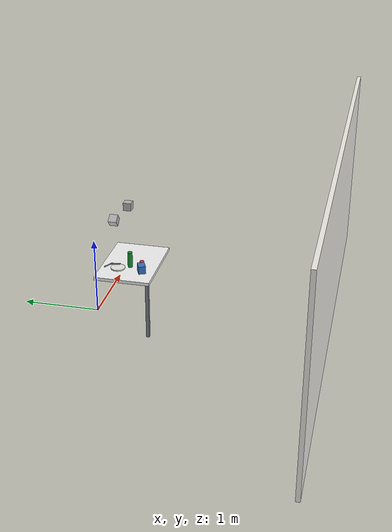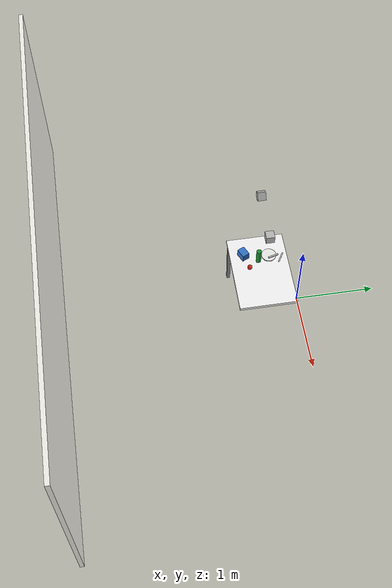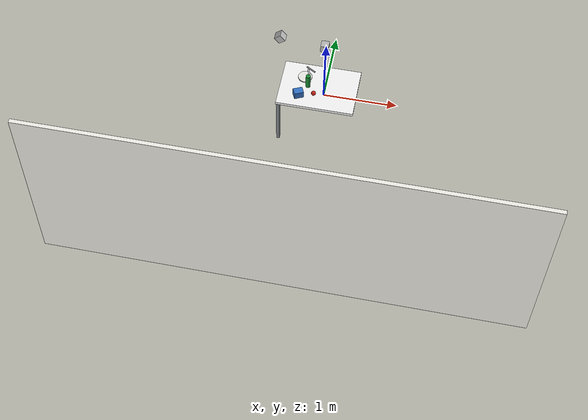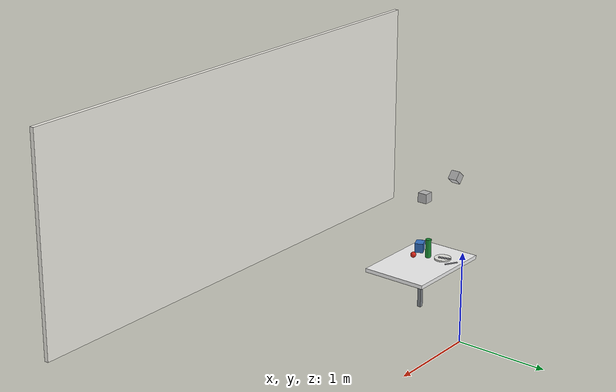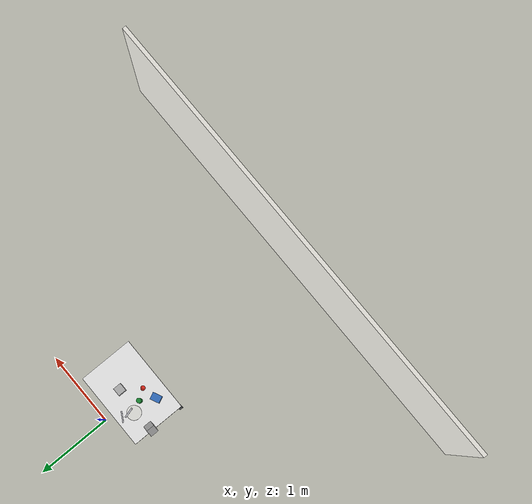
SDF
<sdf version="1.10">
 <world name="bps_room">
  <model name="wall_south">
   <static>true</static>
   <pose>0 -3 1.25 0 0 0</pose>
   <link name="link">
    <collision name="collision">
     <geometry><box><size>6 0.050000000000000003 2.5</size></box></geometry>
    </collision>
    <visual name="visual">
     <geometry><box><size>6 0.050000000000000003 2.5</size></box></geometry>
     <material>
      <ambient>0.949999988 0.939999998 0.910000026 1</ambient>
      <diffuse>0.949999988 0.939999998 0.910000026 1</diffuse>
     </material>
    </visual>
    <inertial>
     <mass>1</mass>
     <inertia><ixx>1</ixx><ixy>0</ixy><ixz>0</ixz><iyy>1</iyy><iyz>0</iyz><izz>1</izz></inertia>
    </inertial>
   </link>
  </model>
  <model name="experiment_table">
   <static>true</static>
   <pose>0 -0.5 0.75 0 0 0</pose>
   <link name="link">
    <collision name="collision">
     <geometry><box><size>1 0.69999999999999996 0.040000000000000001</size></box></geometry>
    </collision>
    <visual name="visual">
     <geometry><box><size>1 0.69999999999999996 0.040000000000000001</size></box></geometry>
     <material>
      <ambient>0.959999979 0.959999979 0.959999979 1</ambient>
      <diffuse>0.959999979 0.959999979 0.959999979 1</diffuse>
     </material>
    </visual>
    <inertial>
     <mass>1</mass>
     <inertia><ixx>1</ixx><ixy>0</ixy><ixz>0</ixz><iyy>1</iyy><iyz>0</iyz><izz>1</izz></inertia>
    </inertial>
   </link>
  </model>
  <model name="table_leg_fl">
   <static>true</static>
   <pose>-0.46999999999999997 -0.81999999999999995 0.375 0 0 0</pose>
   <link name="link">
    <collision name="collision">
     <geometry><box><size>0.040000000000000001 0.040000000000000001 0.75</size></box></geometry>
    </collision>
    <visual name="visual">
     <geometry><box><size>0.040000000000000001 0.040000000000000001 0.75</size></box></geometry>
     <material>
      <ambient>0.5 0.519999981 0.540000021 1</ambient>
      <diffuse>0.5 0.519999981 0.540000021 1</diffuse>
     </material>
    </visual>
    <inertial>
     <mass>1</mass>
     <inertia><ixx>1</ixx><ixy>0</ixy><ixz>0</ixz><iyy>1</iyy><iyz>0</iyz><izz>1</izz></inertia>
    </inertial>
   </link>
  </model>
  <model name="obj_bottle">
   <static>true</static>
   <pose>-0.13945299386978149 -0.51271718740463257 0.875 0 0 0</pose>
   <link name="link">
    <collision name="collision">
     <geometry>
      <cylinder><radius>0.029999999999999999</radius><length>0.20000000000000001</length></cylinder>
     </geometry>
    </collision>
    <visual name="visual">
     <geometry>
      <cylinder><radius>0.029999999999999999</radius><length>0.20000000000000001</length></cylinder>
     </geometry>
     <material>
      <ambient>0.100000001 0.550000012 0.200000003 1</ambient>
      <diffuse>0.100000001 0.550000012 0.200000003 1</diffuse>
      <specular>0.400000006 0.400000006 0.400000006 1</specular>
     </material>
     <plugin name="gz::sim::systems::Label" filename="gz-sim-label-system"><label>1</label></plugin>
    </visual>
    <inertial>
     <mass>1</mass>
     <inertia><ixx>1</ixx><ixy>0</ixy><ixz>0</ixz><iyy>1</iyy><iyz>0</iyz><izz>1</izz></inertia>
    </inertial>
   </link>
  </model>
  <model name="obj_tissue_box">
   <static>true</static>
   <pose>-0.23499999940395355 -0.68500000238418579 0.81999999284744263 0 0 0.43629998910939244</pose>
   <link name="link">
    <collision name="collision">
     <geometry><box><size>0.12 0.089999999999999997 0.10000000000000001</size></box></geometry>
    </collision>
    <visual name="visual">
     <geometry><box><size>0.12 0.089999999999999997 0.10000000000000001</size></box></geometry>
     <material>
      <ambient>0.200000003 0.449999988 0.779999971 1</ambient>
      <diffuse>0.200000003 0.449999988 0.779999971 1</diffuse>
      <specular>0.200000003 0.200000003 0.200000003 1</specular>
     </material>
     <plugin name="gz::sim::systems::Label" filename="gz-sim-label-system"><label>3</label></plugin>
    </visual>
    <inertial>
     <mass>1</mass>
     <inertia><ixx>1</ixx><ixy>0</ixy><ixz>0</ixz><iyy>1</iyy><iyz>0</iyz><izz>1</izz></inertia>
    </inertial>
   </link>
  </model>
  <model name="obj_tomato">
   <static>true</static>
   <pose>-0.044999999999999998 -0.63500000000000001 0.80000000000000004 0 0 0</pose>
   <link name="link">
    <collision name="collision">
     <geometry><sphere><radius>0.029999999999999999</radius></sphere></geometry>
    </collision>
    <visual name="visual">
     <geometry><sphere><radius>0.029999999999999999</radius></sphere></geometry>
     <material>
      <ambient>0.850000024 0.150000006 0.100000001 1</ambient>
      <diffuse>0.850000024 0.150000006 0.100000001 1</diffuse>
      <specular>0.400000006 0.400000006 0.400000006 1</specular>
     </material>
     <plugin name="gz::sim::systems::Label" filename="gz-sim-label-system"><label>9</label></plugin>
    </visual>
    <inertial>
     <mass>1</mass>
     <inertia><ixx>1</ixx><ixy>0</ixy><ixz>0</ixz><iyy>1</iyy><iyz>0</iyz><izz>1</izz></inertia>
    </inertial>
   </link>
  </model>
  <model name="obj_plate">
   <static>true</static>
   <pose>-0.20266464352607727 -0.37092900276184082 0.7774999737739563 0 0 0</pose>
   <link name="link">
    <collision name="collision">
     <geometry>
      <cylinder><radius>0.089999999999999997</radius><length>0.014999999999999999</length></cylinder>
     </geometry>
    </collision>
    <visual name="visual">
     <geometry>
      <cylinder><radius>0.089999999999999997</radius><length>0.014999999999999999</length></cylinder>
     </geometry>
     <material>
      <ambient>0.920000017 0.920000017 0.899999976 1</ambient>
      <diffuse>0.920000017 0.920000017 0.899999976 1</diffuse>
      <specular>0.300000012 0.300000012 0.300000012 1</specular>
     </material>
     <plugin name="gz::sim::systems::Label" filename="gz-sim-label-system"><label>10</label></plugin>
    </visual>
    <inertial>
     <mass>1</mass>
     <inertia><ixx>1</ixx><ixy>0</ixy><ixz>0</ixz><iyy>1</iyy><iyz>0</iyz><izz>1</izz></inertia>
    </inertial>
   </link>
  </model>
  <model name="obj_spoon">
   <static>true</static>
   <pose>-0.16418863832950592 -0.32346346974372864 0.80500000715255737 0 0 0.26180000324942693</pose>
   <link name="link">
    <collision name="collision"><geometry><box><size>0.02 0.13 0.01</size></box></geometry></collision>
    <visual name="visual">
     <geometry><box><size>0.02 0.13 0.01</size></box></geometry>
     <material>
      <ambient>0.720000029 0.720000029 0.75 1</ambient>
      <diffuse>0.720000029 0.720000029 0.75 1</diffuse>
      <specular>0.600000024 0.600000024 0.600000024 1</specular>
     </material>
     <plugin name="gz::sim::systems::Label" filename="gz-sim-label-system"><label>11</label></plugin>
    </visual>
    <inertial>
     <mass>1</mass>
     <inertia><ixx>1</ixx><ixy>0</ixy><ixz>0</ixz><iyy>1</iyy><iyz>0</iyz><izz>1</izz></inertia>
    </inertial>
   </link>
  </model>
  <model name="obj_fork">
   <static>true</static>
   <pose>-0.15102565288543701 -0.23223073780536652 0.77399998903274536 0 0 1.0472000210755694</pose>
   <link name="link">
    <collision name="collision">
     <geometry><box><size>0.014999999999999999 0.14000000000000001 0.0080000000000000002</size></box></geometry>
    </collision>
    <visual name="visual">
     <geometry><box><size>0.014999999999999999 0.14000000000000001 0.0080000000000000002</size></box></geometry>
     <material>
      <ambient>0.720000029 0.720000029 0.75 1</ambient>
      <diffuse>0.720000029 0.720000029 0.75 1</diffuse>
      <specular>0.600000024 0.600000024 0.600000024 1</specular>
     </material>
     <plugin name="gz::sim::systems::Label" filename="gz-sim-label-system"><label>12</label></plugin>
    </visual>
    <inertial>
     <mass>1</mass>
     <inertia><ixx>1</ixx><ixy>0</ixy><ixz>0</ixz><iyy>1</iyy><iyz>0</iyz><izz>1</izz></inertia>
    </inertial>
   </link>
  </model>
  <model name="depth_camera">
   <static>true</static>
   <pose>3.4694469519536142e-17 -0.5 1.5700000000000001 3.1415926535897931 1.5707926536057681 3.1415926535897931</pose>
   <link name="link">
    <pose>0.050000000000000003 0.050000000000000003 0.050000000000000003 0 0 0</pose>
    <inertial>
     <mass>0.10000000000000001</mass>
     <inertia>
      <ixx>0.00016666700000000001</ixx>
      <iyy>0.00016666700000000001</iyy>
      <izz>0.00016666700000000001</izz>
      <ixy>0</ixy>
      <ixz>0</ixz>
      <iyz>0</iyz>
     </inertia>
    </inertial>
    <collision name="collision">
     <geometry><box><size>0.10000000000000001 0.10000000000000001 0.10000000000000001</size></box></geometry>
    </collision>
    <visual name="visual">
     <geometry><box><size>0.10000000000000001 0.10000000000000001 0.10000000000000001</size></box></geometry>
    </visual>
    <sensor name="depth_camera1" type="depth_camera">
     <topic>depth_camera</topic>
     <update_rate>10</update_rate>
     <enable_metrics>false</enable_metrics>
     <camera>
      <horizontal_fov>1.2</horizontal_fov>
      <image>
       <width>640</width>
       <height>480</height>
       <format>R_FLOAT32</format>
       <anti_aliasing>4</anti_aliasing>
      </image>
      <camera_info_topic>__default__</camera_info_topic>
      <triggered>false</triggered>
      <clip><near>0.10000000000000001</near><far>2</far></clip>
      <save enabled="false"><path>__default__</path></save>
      <visibility_mask>4294967295</visibility_mask>
      <noise><type>none</type><mean>0</mean><stddev>0</stddev></noise>
      <distortion><k1>0</k1><k2>0</k2><k3>0</k3><p1>0</p1><p2>0</p2><center>0.5 0.5</center></distortion>
      <lens>
       <type>stereographic</type>
       <scale_to_hfov>true</scale_to_hfov>
       <cutoff_angle>1.5707963267948966</cutoff_angle>
       <env_texture_size>256</env_texture_size>
      </lens>
     </camera>
    </sensor>
    <sensor name="rgb_camera" type="camera">
     <topic>rgb_camera</topic>
     <update_rate>10</update_rate>
     <enable_metrics>false</enable_metrics>
     <camera>
      <horizontal_fov>1.2</horizontal_fov>
      <image><width>640</width><height>480</height><format>RGB_INT8</format><anti_aliasing>4</anti_aliasing></image>
      <camera_info_topic>__default__</camera_info_topic>
      <triggered>false</triggered>
      <clip><near>0.10000000000000001</near><far>2</far></clip>
      <save enabled="false"><path>__default__</path></save>
      <visibility_mask>4294967295</visibility_mask>
      <noise><type>none</type><mean>0</mean><stddev>0</stddev></noise>
      <distortion><k1>0</k1><k2>0</k2><k3>0</k3><p1>0</p1><p2>0</p2><center>0.5 0.5</center></distortion>
      <lens>
       <type>stereographic</type>
       <scale_to_hfov>true</scale_to_hfov>
       <cutoff_angle>1.5707963267948966</cutoff_angle>
       <env_texture_size>256</env_texture_size>
      </lens>
     </camera>
    </sensor>
    <sensor name="semantic_camera" type="segmentation_camera">
     <topic>semantic_camera</topic>
     <update_rate>10</update_rate>
     <enable_metrics>false</enable_metrics>
     <camera>
      <horizontal_fov>1.2</horizontal_fov>
      <image><width>640</width><height>480</height></image>
      <clip><near>0.1</near><far>100</far></clip>
      <segmentation_type>semantic</segmentation_type>
     </camera>
    </sensor>
   </link>
  </model>
  <model name="depth_camera_v4">
   <static>true</static>
   <pose>-0.584376452173502 -0.4965921133384108 1.581325701523233 -0.0 0.8726646259971649 -8.636002062691953e-17</pose>
   <link name="link">
    <pose>0.050000000000000003 0.050000000000000003 0.050000000000000003 0 0 0</pose>
    <inertial>
     <mass>0.10000000000000001</mass>
     <inertia>
      <ixx>0.00016666700000000001</ixx>
      <iyy>0.00016666700000000001</iyy>
      <izz>0.00016666700000000001</izz>
      <ixy>0</ixy>
      <ixz>0</ixz>
      <iyz>0</iyz>
     </inertia>
    </inertial>
    <collision name="collision">
     <geometry><box><size>0.10000000000000001 0.10000000000000001 0.10000000000000001</size></box></geometry>
    </collision>
    <visual name="visual">
     <geometry><box><size>0.10000000000000001 0.10000000000000001 0.10000000000000001</size></box></geometry>
    </visual>
    <sensor name="depth_camera4" type="depth_camera">
     <topic>depth_camera_v4</topic>
     <update_rate>10</update_rate>
     <enable_metrics>false</enable_metrics>
     <camera>
      <horizontal_fov>1.2</horizontal_fov>
      <image>
       <width>640</width>
       <height>480</height>
       <format>R_FLOAT32</format>
       <anti_aliasing>4</anti_aliasing>
      </image>
      <camera_info_topic>__default__</camera_info_topic>
      <triggered>false</triggered>
      <clip><near>0.10000000000000001</near><far>2</far></clip>
      <save enabled="false"><path>__default__</path></save>
      <visibility_mask>4294967295</visibility_mask>
      <noise><type>none</type><mean>0</mean><stddev>0</stddev></noise>
      <distortion><k1>0</k1><k2>0</k2><k3>0</k3><p1>0</p1><p2>0</p2><center>0.5 0.5</center></distortion>
      <lens>
       <type>stereographic</type>
       <scale_to_hfov>true</scale_to_hfov>
       <cutoff_angle>1.5707963267948966</cutoff_angle>
       <env_texture_size>256</env_texture_size>
      </lens>
     </camera>
    </sensor>
    <sensor name="rgb_camera4" type="camera">
     <topic>rgb_camera_v4</topic>
     <update_rate>10</update_rate>
     <enable_metrics>false</enable_metrics>
     <camera>
      <horizontal_fov>1.2</horizontal_fov>
      <image><width>640</width><height>480</height><format>RGB_INT8</format><anti_aliasing>4</anti_aliasing></image>
      <camera_info_topic>__default__</camera_info_topic>
      <triggered>false</triggered>
      <clip><near>0.10000000000000001</near><far>2</far></clip>
      <save enabled="false"><path>__default__</path></save>
      <visibility_mask>4294967295</visibility_mask>
      <noise><type>none</type><mean>0</mean><stddev>0</stddev></noise>
      <distortion><k1>0</k1><k2>0</k2><k3>0</k3><p1>0</p1><p2>0</p2><center>0.5 0.5</center></distortion>
      <lens>
       <type>stereographic</type>
       <scale_to_hfov>true</scale_to_hfov>
       <cutoff_angle>1.5707963267948966</cutoff_angle>
       <env_texture_size>256</env_texture_size>
      </lens>
     </camera>
    </sensor>
    <sensor name="semantic_camera4" type="segmentation_camera">
     <topic>semantic_camera_v4</topic>
     <update_rate>10</update_rate>
     <enable_metrics>false</enable_metrics>
     <camera>
      <horizontal_fov>1.2</horizontal_fov>
      <image><width>640</width><height>480</height></image>
      <clip><near>0.1</near><far>100</far></clip>
      <segmentation_type>semantic</segmentation_type>
     </camera>
    </sensor>
   </link>
  </model>
 </world>
</sdf>
